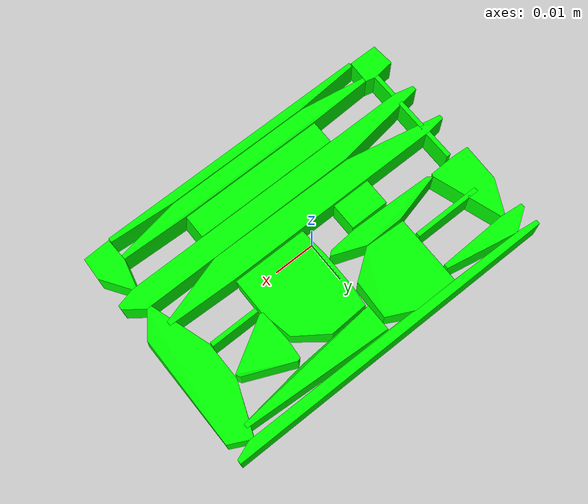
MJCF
<mujoco model="shapenet4-8">
  <asset>
    <mesh file="meshes/shapenet4-8/shapenet4-8_0.stl" name="shapenet4-8_0" scale="0.1 0.1 0.1"/>
    <mesh file="meshes/shapenet4-8/shapenet4-8_1.stl" name="shapenet4-8_1" scale="0.1 0.1 0.1"/>
    <mesh file="meshes/shapenet4-8/shapenet4-8_2.stl" name="shapenet4-8_2" scale="0.1 0.1 0.1"/>
    <mesh file="meshes/shapenet4-8/shapenet4-8_3.stl" name="shapenet4-8_3" scale="0.1 0.1 0.1"/>
    <mesh file="meshes/shapenet4-8/shapenet4-8_4.stl" name="shapenet4-8_4" scale="0.1 0.1 0.1"/>
    <mesh file="meshes/shapenet4-8/shapenet4-8_5.stl" name="shapenet4-8_5" scale="0.1 0.1 0.1"/>
    <mesh file="meshes/shapenet4-8/shapenet4-8_6.stl" name="shapenet4-8_6" scale="0.1 0.1 0.1"/>
    <mesh file="meshes/shapenet4-8/shapenet4-8_7.stl" name="shapenet4-8_7" scale="0.1 0.1 0.1"/>
    <mesh file="meshes/shapenet4-8/shapenet4-8_8.stl" name="shapenet4-8_8" scale="0.1 0.1 0.1"/>
    <mesh file="meshes/shapenet4-8/shapenet4-8_9.stl" name="shapenet4-8_9" scale="0.1 0.1 0.1"/>
    <mesh file="meshes/shapenet4-8/shapenet4-8_10.stl" name="shapenet4-8_10" scale="0.1 0.1 0.1"/>
    <mesh file="meshes/shapenet4-8/shapenet4-8_11.stl" name="shapenet4-8_11" scale="0.1 0.1 0.1"/>
    <mesh file="meshes/shapenet4-8/shapenet4-8_12.stl" name="shapenet4-8_12" scale="0.1 0.1 0.1"/>
    <mesh file="meshes/shapenet4-8/shapenet4-8_13.stl" name="shapenet4-8_13" scale="0.1 0.1 0.1"/>
    <mesh file="meshes/shapenet4-8/shapenet4-8_14.stl" name="shapenet4-8_14" scale="0.1 0.1 0.1"/>
    <mesh file="meshes/shapenet4-8/shapenet4-8_15.stl" name="shapenet4-8_15" scale="0.1 0.1 0.1"/>
    <mesh file="meshes/shapenet4-8/shapenet4-8_16.stl" name="shapenet4-8_16" scale="0.1 0.1 0.1"/>
    <mesh file="meshes/shapenet4-8/shapenet4-8_17.stl" name="shapenet4-8_17" scale="0.1 0.1 0.1"/>
    <mesh file="meshes/shapenet4-8/shapenet4-8_18.stl" name="shapenet4-8_18" scale="0.1 0.1 0.1"/>
    <mesh file="meshes/shapenet4-8/shapenet4-8_19.stl" name="shapenet4-8_19" scale="0.1 0.1 0.1"/>
  </asset>
  <worldbody>
    <body>
      <body name="collision">
        <geom pos="0 0 0" mesh="shapenet4-8_0" type="mesh" solimp="0.998 0.998 0.001" solref="0.001 1" density="100" friction="0.95 0.3 0.1" rgba="0 1 0 1" group="1" condim="4"/>
        <geom pos="0 0 0" mesh="shapenet4-8_1" type="mesh" solimp="0.998 0.998 0.001" solref="0.001 1" density="100" friction="0.95 0.3 0.1" rgba="0 1 0 1" group="1" condim="4"/>
        <geom pos="0 0 0" mesh="shapenet4-8_2" type="mesh" solimp="0.998 0.998 0.001" solref="0.001 1" density="100" friction="0.95 0.3 0.1" rgba="0 1 0 1" group="1" condim="4"/>
        <geom pos="0 0 0" mesh="shapenet4-8_3" type="mesh" solimp="0.998 0.998 0.001" solref="0.001 1" density="100" friction="0.95 0.3 0.1" rgba="0 1 0 1" group="1" condim="4"/>
        <geom pos="0 0 0" mesh="shapenet4-8_4" type="mesh" solimp="0.998 0.998 0.001" solref="0.001 1" density="100" friction="0.95 0.3 0.1" rgba="0 1 0 1" group="1" condim="4"/>
        <geom pos="0 0 0" mesh="shapenet4-8_5" type="mesh" solimp="0.998 0.998 0.001" solref="0.001 1" density="100" friction="0.95 0.3 0.1" rgba="0 1 0 1" group="1" condim="4"/>
        <geom pos="0 0 0" mesh="shapenet4-8_6" type="mesh" solimp="0.998 0.998 0.001" solref="0.001 1" density="100" friction="0.95 0.3 0.1" rgba="0 1 0 1" group="1" condim="4"/>
        <geom pos="0 0 0" mesh="shapenet4-8_7" type="mesh" solimp="0.998 0.998 0.001" solref="0.001 1" density="100" friction="0.95 0.3 0.1" rgba="0 1 0 1" group="1" condim="4"/>
        <geom pos="0 0 0" mesh="shapenet4-8_8" type="mesh" solimp="0.998 0.998 0.001" solref="0.001 1" density="100" friction="0.95 0.3 0.1" rgba="0 1 0 1" group="1" condim="4"/>
        <geom pos="0 0 0" mesh="shapenet4-8_9" type="mesh" solimp="0.998 0.998 0.001" solref="0.001 1" density="100" friction="0.95 0.3 0.1" rgba="0 1 0 1" group="1" condim="4"/>
        <geom pos="0 0 0" mesh="shapenet4-8_10" type="mesh" solimp="0.998 0.998 0.001" solref="0.001 1" density="100" friction="0.95 0.3 0.1" rgba="0 1 0 1" group="1" condim="4"/>
        <geom pos="0 0 0" mesh="shapenet4-8_11" type="mesh" solimp="0.998 0.998 0.001" solref="0.001 1" density="100" friction="0.95 0.3 0.1" rgba="0 1 0 1" group="1" condim="4"/>
        <geom pos="0 0 0" mesh="shapenet4-8_12" type="mesh" solimp="0.998 0.998 0.001" solref="0.001 1" density="100" friction="0.95 0.3 0.1" rgba="0 1 0 1" group="1" condim="4"/>
        <geom pos="0 0 0" mesh="shapenet4-8_13" type="mesh" solimp="0.998 0.998 0.001" solref="0.001 1" density="100" friction="0.95 0.3 0.1" rgba="0 1 0 1" group="1" condim="4"/>
        <geom pos="0 0 0" mesh="shapenet4-8_14" type="mesh" solimp="0.998 0.998 0.001" solref="0.001 1" density="100" friction="0.95 0.3 0.1" rgba="0 1 0 1" group="1" condim="4"/>
        <geom pos="0 0 0" mesh="shapenet4-8_15" type="mesh" solimp="0.998 0.998 0.001" solref="0.001 1" density="100" friction="0.95 0.3 0.1" rgba="0 1 0 1" group="1" condim="4"/>
        <geom pos="0 0 0" mesh="shapenet4-8_16" type="mesh" solimp="0.998 0.998 0.001" solref="0.001 1" density="100" friction="0.95 0.3 0.1" rgba="0 1 0 1" group="1" condim="4"/>
        <geom pos="0 0 0" mesh="shapenet4-8_17" type="mesh" solimp="0.998 0.998 0.001" solref="0.001 1" density="100" friction="0.95 0.3 0.1" rgba="0 1 0 1" group="1" condim="4"/>
        <geom pos="0 0 0" mesh="shapenet4-8_18" type="mesh" solimp="0.998 0.998 0.001" solref="0.001 1" density="100" friction="0.95 0.3 0.1" rgba="0 1 0 1" group="1" condim="4"/>
        <geom pos="0 0 0" mesh="shapenet4-8_19" type="mesh" solimp="0.998 0.998 0.001" solref="0.001 1" density="100" friction="0.95 0.3 0.1" rgba="0 1 0 1" group="1" condim="4"/>
      </body>
      <body name="visual">
        <geom pos="0 0 0" mesh="shapenet4-8_0" type="mesh" rgba="0 1 0 1" conaffinity="0" contype="0" group="0" mass="0.0001"/>
        <geom pos="0 0 0" mesh="shapenet4-8_1" type="mesh" rgba="0 1 0 1" conaffinity="0" contype="0" group="0" mass="0.0001"/>
        <geom pos="0 0 0" mesh="shapenet4-8_2" type="mesh" rgba="0 1 0 1" conaffinity="0" contype="0" group="0" mass="0.0001"/>
        <geom pos="0 0 0" mesh="shapenet4-8_3" type="mesh" rgba="0 1 0 1" conaffinity="0" contype="0" group="0" mass="0.0001"/>
        <geom pos="0 0 0" mesh="shapenet4-8_4" type="mesh" rgba="0 1 0 1" conaffinity="0" contype="0" group="0" mass="0.0001"/>
        <geom pos="0 0 0" mesh="shapenet4-8_5" type="mesh" rgba="0 1 0 1" conaffinity="0" contype="0" group="0" mass="0.0001"/>
        <geom pos="0 0 0" mesh="shapenet4-8_6" type="mesh" rgba="0 1 0 1" conaffinity="0" contype="0" group="0" mass="0.0001"/>
        <geom pos="0 0 0" mesh="shapenet4-8_7" type="mesh" rgba="0 1 0 1" conaffinity="0" contype="0" group="0" mass="0.0001"/>
        <geom pos="0 0 0" mesh="shapenet4-8_8" type="mesh" rgba="0 1 0 1" conaffinity="0" contype="0" group="0" mass="0.0001"/>
        <geom pos="0 0 0" mesh="shapenet4-8_9" type="mesh" rgba="0 1 0 1" conaffinity="0" contype="0" group="0" mass="0.0001"/>
        <geom pos="0 0 0" mesh="shapenet4-8_10" type="mesh" rgba="0 1 0 1" conaffinity="0" contype="0" group="0" mass="0.0001"/>
        <geom pos="0 0 0" mesh="shapenet4-8_11" type="mesh" rgba="0 1 0 1" conaffinity="0" contype="0" group="0" mass="0.0001"/>
        <geom pos="0 0 0" mesh="shapenet4-8_12" type="mesh" rgba="0 1 0 1" conaffinity="0" contype="0" group="0" mass="0.0001"/>
        <geom pos="0 0 0" mesh="shapenet4-8_13" type="mesh" rgba="0 1 0 1" conaffinity="0" contype="0" group="0" mass="0.0001"/>
        <geom pos="0 0 0" mesh="shapenet4-8_14" type="mesh" rgba="0 1 0 1" conaffinity="0" contype="0" group="0" mass="0.0001"/>
        <geom pos="0 0 0" mesh="shapenet4-8_15" type="mesh" rgba="0 1 0 1" conaffinity="0" contype="0" group="0" mass="0.0001"/>
        <geom pos="0 0 0" mesh="shapenet4-8_16" type="mesh" rgba="0 1 0 1" conaffinity="0" contype="0" group="0" mass="0.0001"/>
        <geom pos="0 0 0" mesh="shapenet4-8_17" type="mesh" rgba="0 1 0 1" conaffinity="0" contype="0" group="0" mass="0.0001"/>
        <geom pos="0 0 0" mesh="shapenet4-8_18" type="mesh" rgba="0 1 0 1" conaffinity="0" contype="0" group="0" mass="0.0001"/>
        <geom pos="0 0 0" mesh="shapenet4-8_19" type="mesh" rgba="0 1 0 1" conaffinity="0" contype="0" group="0" mass="0.0001"/>
      </body>
      <site rgba="0 0 0 0" size="0.005" pos="0 0 -0.06" name="bottom_site"/>
      <site rgba="0 0 0 0" size="0.005" pos="0 0 0.04" name="top_site"/>
      <site rgba="0 0 0 0" size="0.005" pos="0.025 0.025 0" name="horizontal_radius_site"/>
    </body>
  </worldbody>
</mujoco>
